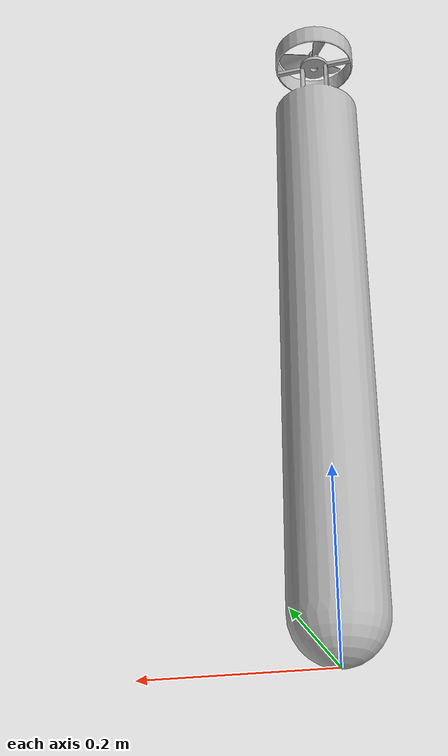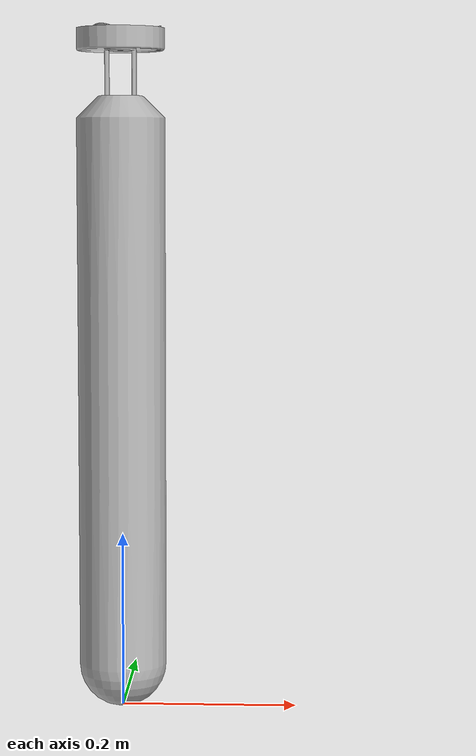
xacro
<?xml version="1.0" ?>
<robot name="UWV" xmlns:xacro="http://www.ros.org/wiki/xacro">

<xacro:include filename="$(find UWV_description)/urdf/materials.xacro" />
<xacro:include filename="$(find UWV_description)/urdf/UWV.trans" />
<xacro:include filename="$(find UWV_description)/gazebo/uvw_materials.gazebo" />
<xacro:include filename="$(find UWV_description)/gazebo/uwv_physics.gazebo" />
<xacro:include filename="$(find UWV_description)/gazebo/uwv_plugins.gazebo" />
<link name="base_link">
  <inertial>
    <origin xyz="-1.3997590337121873e-07 1.3961798364906141e-08 0.3551309326758064" rpy="0 0 0"/>
    <mass value="41.7013767841429"/>
    <inertia ixx="1.629796" iyy="1.629818" izz="0.051274" ixy="0.0" iyz="-0.0" ixz="2e-06"/>
  </inertial>
  <visual>
    <origin xyz="0 0 0" rpy="0 0 0"/>
    <geometry>
      <mesh filename="package://UWV_description/meshes/base_link.stl" scale="0.001 0.001 0.001"/>
    </geometry>
    <material name="silver"/>
  </visual>
  <collision>
    <origin xyz="0 0 0" rpy="0 0 0"/>
    <geometry>
      <mesh filename="package://UWV_description/meshes/base_link.stl" scale="0.001 0.001 0.001"/>
    </geometry>
  </collision>
</link>

<link name="propellor_1">
  <inertial>
    <origin xyz="7.264684542818145e-08 -1.1446328551656393e-07 -0.0044027513150938224" rpy="0 0 0"/>
    <mass value="0.02190685278746915"/>
    <inertia ixx="8e-06" iyy="8e-06" izz="1.4e-05" ixy="-0.0" iyz="0.0" ixz="-0.0"/>
  </inertial>
  <visual>
    <origin xyz="-0.0 -0.0 -0.775" rpy="0 0 0"/>
    <geometry>
      <mesh filename="package://UWV_description/meshes/propellor_1.stl" scale="0.001 0.001 0.001"/>
    </geometry>
    <material name="silver"/>
  </visual>
  <collision>
    <origin xyz="-0.0 -0.0 -0.775" rpy="0 0 0"/>
    <geometry>
      <mesh filename="package://UWV_description/meshes/propellor_1.stl" scale="0.001 0.001 0.001"/>
    </geometry>
  </collision>
</link>

<joint name="Revolute 2" type="continuous">
  <origin xyz="0.0 0.0 0.775" rpy="0 0 0"/>
  <parent link="base_link"/>
  <child link="propellor_1"/>
  <axis xyz="0.0 0.0 1.0"/>
</joint>

</robot>

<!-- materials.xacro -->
<robot name="UWV" xmlns:xacro="http://www.ros.org/wiki/xacro" >

<material name="silver">
  <color rgba="0.700 0.700 0.700 1.000"/>
</material>

</robot>

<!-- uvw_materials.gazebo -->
<robot name="UWV" xmlns:xacro="http://www.ros.org/wiki/xacro" >

<xacro:property name="body_color" value="Gazebo/Yellow" />
<xacro:property name="propellor_color" value="Gazebo/Red" />

<gazebo reference="base_link">
  <material>${body_color}</material>
</gazebo>

<gazebo reference="propellor_1">
  <material>${propellor_color}</material>

</gazebo>

</robot>
